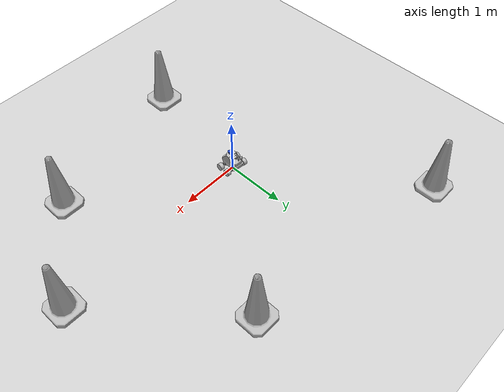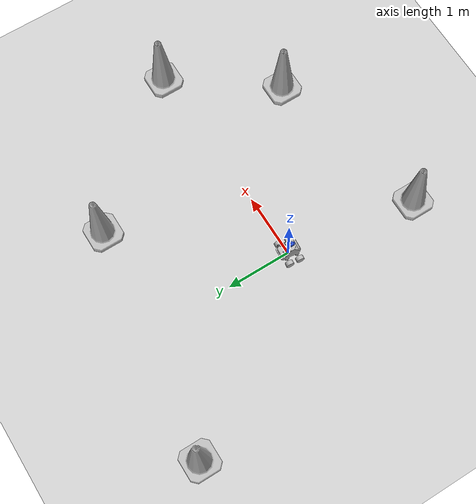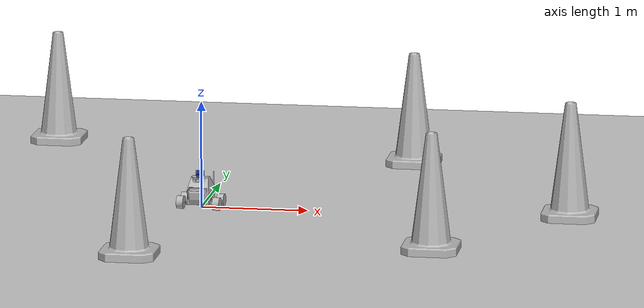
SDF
<sdf version="1.7">
 <world name="default">
  <light name="sun" type="directional">
   <pose>0 0 10 0 -0 0</pose>
   <diffuse>0.8 0.8 0.8 1</diffuse>
   <specular>0.2 0.2 0.2 1</specular>
   <attenuation>
    <range>1000</range>
    <constant>0.9</constant>
    <linear>0.01</linear>
    <quadratic>0.001</quadratic>
   </attenuation>
   <direction>-0.5 0.1 -0.9</direction>
   <spot><inner_angle>0</inner_angle><outer_angle>0</outer_angle><falloff>0</falloff></spot>
  </light>
  <model name="ground_plane">
   <static>1</static>
   <link name="link">
    <collision name="collision">
     <geometry><plane><normal>0 0 1</normal><size>100 100</size></plane></geometry>
     <surface><friction><ode><mu>100</mu><mu2>50</mu2></ode></friction></surface>
    </collision>
    <visual name="visual">
     <cast_shadows>0</cast_shadows>
     <geometry><plane><normal>0 0 1</normal><size>100 100</size></plane></geometry>
     <material>
      <script><uri>file://media/materials/scripts/gazebo.material</uri><name>Gazebo/Grey</name></script>
     </material>
    </visual>
   </link>
  </model>
  <gravity>0 0 -9.8</gravity>
  <magnetic_field>6e-06 2.3e-05 -4.2e-05</magnetic_field>
  <atmosphere type="adiabatic"/>
  <physics type="ode">
   <max_step_size>0.001</max_step_size>
   <real_time_factor>1</real_time_factor>
   <real_time_update_rate>1000</real_time_update_rate>
  </physics>
  <scene><ambient>0.4 0.4 0.4 1</ambient><background>0.7 0.7 0.7 1</background><shadows>1</shadows></scene>
  <audio><device>default</device></audio>
  <spherical_coordinates>
   <surface_model>EARTH_WGS84</surface_model>
   <latitude_deg>0</latitude_deg>
   <longitude_deg>0</longitude_deg>
   <elevation>0</elevation>
   <heading_deg>0</heading_deg>
  </spherical_coordinates>
  <model name="robot">
   <link name="base_link">
    <inertial>
     <pose>0.015785 9.1e-05 0.018895 0 -0 0</pose>
     <mass>5.07633</mass>
     <inertia>
      <ixx>0.0593334</ixx>
      <ixy>-7.42026e-05</ixy>
      <ixz>-0.00932083</ixz>
      <iyy>0.0573165</iyy>
      <iyz>1.2809e-05</iyz>
      <izz>0.0271707</izz>
     </inertia>
    </inertial>
    <collision name="base_link_fixed_joint_lump__camera_link_collision">
     <pose>0.1515 0.003588 0.025 0 -0 0</pose>
     <geometry><mesh><scale>1 1 1</scale><uri>model://robo2/meshes/camera_link.STL</uri></mesh></geometry>
    </collision>
    <collision name="base_link_fixed_joint_lump__chassis_link_collision_1">
     <geometry><mesh><scale>1 1 1</scale><uri>model://robo2/meshes/base_link.STL</uri></mesh></geometry>
    </collision>
    <collision name="base_link_fixed_joint_lump__lidar_collision_2">
     <pose>0.056196 0 0.1546 0 -0 0</pose>
     <geometry><mesh><scale>1 1 1</scale><uri>model://robo2/meshes/lidar.STL</uri></mesh></geometry>
    </collision>
    <visual name="base_link_fixed_joint_lump__camera_link_visual">
     <pose>0.1515 0.003588 0.025 0 -0 0</pose>
     <geometry><mesh><scale>1 1 1</scale><uri>model://robo2/meshes/camera_link.STL</uri></mesh></geometry>
    </visual>
    <visual name="base_link_fixed_joint_lump__chassis_link_visual_1">
     <geometry><mesh><scale>1 1 1</scale><uri>model://robo2/meshes/base_link.STL</uri></mesh></geometry>
    </visual>
    <visual name="base_link_fixed_joint_lump__lidar_visual_2">
     <pose>0.056196 0 0.1546 0 -0 0</pose>
     <geometry><mesh><scale>1 1 1</scale><uri>model://robo2/meshes/lidar.STL</uri></mesh></geometry>
     <material>
      <script><name>Gazebo/Blue</name><uri>file://media/materials/scripts/gazebo.material</uri></script>
     </material>
    </visual>
    <sensor name="camera" type="camera">
     <visualize>1</visualize>
     <update_rate>30</update_rate>
     <camera>
      <horizontal_fov>1.207</horizontal_fov>
      <image><width>1920</width><height>1080</height><format>R8G8B8</format></image>
      <clip><near>0.02</near><far>300</far></clip>
     </camera>
     <plugin name="camera_controller" filename="libgazebo_ros_camera.so">
      <alwaysOn>1</alwaysOn>
      <updateRate>0.0</updateRate>
      <cameraName>camera</cameraName>
      <imageTopicName>camera_image_raw</imageTopicName>
      <cameraInfoTopicName>camera_info</cameraInfoTopicName>
      <frameName>camera_link_optical</frameName>
      <hackBaseline>0.07</hackBaseline>
     </plugin>
     <pose>0.1515 0.003588 0.025 0 -0 0</pose>
    </sensor>
    <sensor name="laser" type="ray">
     <visualize>0</visualize>
     <update_rate>10</update_rate>
     <ray>
      <scan>
       <horizontal>
        <samples>360</samples>
        <min_angle>-3.14</min_angle>
        <max_angle>3.14</max_angle>
        <resolution>1</resolution>
       </horizontal>
       <vertical><samples>1</samples><min_angle>0</min_angle><max_angle>0</max_angle></vertical>
      </scan>
      <range><min>0.3</min><max>12</max></range>
     </ray>
     <plugin name="laser_controller" filename="libgazebo_ros_ray_sensor.so">
      <ros><argument>~/out:=scan</argument></ros>
      <output_type>sensor_msgs/LaserScan</output_type>
      <frame_name>lidar</frame_name>
     </plugin>
     <pose>0.056196 0 0.1546 0 -0 0</pose>
    </sensor>
   </link>
   <joint name="rueda_der_abajo_joint" type="revolute">
    <pose relative_to="base_link">-0.065951 -0.20435 -0.107 1.5708 -0 0</pose>
    <parent>base_link</parent>
    <child>rueda_der_abajo</child>
    <axis>
     <xyz>0 0 -1</xyz>
     <limit><lower>-1e+16</lower><upper>1e+16</upper></limit>
     <dynamics><spring_reference>0</spring_reference><spring_stiffness>0</spring_stiffness></dynamics>
    </axis>
   </joint>
   <link name="rueda_der_abajo">
    <pose relative_to="rueda_der_abajo_joint">0 0 0 0 -0 0</pose>
    <inertial>
     <pose>-0 -0 -0.031817 0 -0 0</pose>
     <mass>0.72984</mass>
     <inertia>
      <ixx>0.00091283</ixx>
      <ixy>1.6304e-19</ixy>
      <ixz>-5.3591e-20</ixz>
      <iyy>0.00091283</iyy>
      <iyz>-9.375e-20</iyz>
      <izz>0.001326</izz>
     </inertia>
    </inertial>
    <collision name="rueda_der_abajo_collision">
     <geometry><mesh><scale>1 1 1</scale><uri>model://robo2/meshes/rueda_der_abajo.STL</uri></mesh></geometry>
    </collision>
    <visual name="rueda_der_abajo_visual">
     <geometry><mesh><scale>1 1 1</scale><uri>model://robo2/meshes/rueda_der_abajo.STL</uri></mesh></geometry>
    </visual>
   </link>
   <joint name="rueda_der_arriba_joint" type="revolute">
    <pose relative_to="base_link">0.10092 -0.20435 -0.107 1.5708 -0 0</pose>
    <parent>base_link</parent>
    <child>rueda_der_arriba</child>
    <axis>
     <xyz>0 0 -1</xyz>
     <limit><lower>-1e+16</lower><upper>1e+16</upper></limit>
     <dynamics><spring_reference>0</spring_reference><spring_stiffness>0</spring_stiffness></dynamics>
    </axis>
   </joint>
   <link name="rueda_der_arriba">
    <pose relative_to="rueda_der_arriba_joint">0 0 0 0 -0 0</pose>
    <inertial>
     <pose>0 -0 -0.031817 0 -0 0</pose>
     <mass>0.72984</mass>
     <inertia>
      <ixx>0.00091283</ixx>
      <ixy>-7.5158e-20</ixy>
      <ixz>-3.6325e-20</ixz>
      <iyy>0.00091283</iyy>
      <iyz>-1.7327e-20</iyz>
      <izz>0.001326</izz>
     </inertia>
    </inertial>
    <collision name="rueda_der_arriba_collision">
     <geometry><mesh><scale>1 1 1</scale><uri>model://robo2/meshes/rueda_der_arriba.STL</uri></mesh></geometry>
    </collision>
    <visual name="rueda_der_arriba_visual">
     <geometry><mesh><scale>1 1 1</scale><uri>model://robo2/meshes/rueda_der_arriba.STL</uri></mesh></geometry>
    </visual>
   </link>
   <joint name="rueda_izq_abajo_joint" type="revolute">
    <pose relative_to="base_link">-0.065951 0.20435 -0.107 -1.5708 0 0</pose>
    <parent>base_link</parent>
    <child>rueda_izq_abajo</child>
    <axis>
     <xyz>0 0 1</xyz>
     <limit><lower>-1e+16</lower><upper>1e+16</upper></limit>
     <dynamics><spring_reference>0</spring_reference><spring_stiffness>0</spring_stiffness></dynamics>
    </axis>
   </joint>
   <link name="rueda_izq_abajo">
    <pose relative_to="rueda_izq_abajo_joint">0 0 0 0 -0 0</pose>
    <inertial>
     <pose>0 -0 -0.031817 0 -0 0</pose>
     <mass>0.72984</mass>
     <inertia>
      <ixx>0.00091283</ixx>
      <ixy>1.3848e-21</ixy>
      <ixz>4.073e-21</ixz>
      <iyy>0.00091283</iyy>
      <iyz>2.5739e-20</iyz>
      <izz>0.001326</izz>
     </inertia>
    </inertial>
    <collision name="rueda_izq_abajo_collision">
     <geometry><mesh><scale>1 1 1</scale><uri>model://robo2/meshes/rueda_izq_abajo.STL</uri></mesh></geometry>
    </collision>
    <visual name="rueda_izq_abajo_visual">
     <geometry><mesh><scale>1 1 1</scale><uri>model://robo2/meshes/rueda_izq_abajo.STL</uri></mesh></geometry>
    </visual>
   </link>
   <joint name="rueda_izq_arriba_joint" type="revolute">
    <pose relative_to="base_link">0.10092 0.20435 -0.107 -1.5708 0 0</pose>
    <parent>base_link</parent>
    <child>rueda_izq_arriba</child>
    <axis>
     <xyz>0 0 1</xyz>
     <limit><lower>-1e+16</lower><upper>1e+16</upper></limit>
     <dynamics><spring_reference>0</spring_reference><spring_stiffness>0</spring_stiffness></dynamics>
    </axis>
   </joint>
   <link name="rueda_izq_arriba">
    <pose relative_to="rueda_izq_arriba_joint">0 0 0 0 -0 0</pose>
    <inertial>
     <pose>0 0 -0.031817 0 -0 0</pose>
     <mass>0.72984</mass>
     <inertia>
      <ixx>0.00091283</ixx>
      <ixy>-4.1103e-20</ixy>
      <ixz>1.43e-20</ixz>
      <iyy>0.00091283</iyy>
      <iyz>-5.6001e-20</iyz>
      <izz>0.001326</izz>
     </inertia>
    </inertial>
    <collision name="rueda_izq_arriba_collision">
     <geometry><mesh><scale>1 1 1</scale><uri>model://robo2/meshes/rueda_izq_arriba.STL</uri></mesh></geometry>
    </collision>
    <visual name="rueda_izq_arriba_visual">
     <geometry><mesh><scale>1 1 1</scale><uri>model://robo2/meshes/rueda_izq_arriba.STL</uri></mesh></geometry>
    </visual>
   </link>
   <static>0</static>
   <plugin name="gazebo_ros2_control" filename="libgazebo_ros2_control.so">
    <parameters>/home/andres/agrobotV2/install/robo2/share/robo2/config/my_controllers.yaml</parameters>
   </plugin>
   <pose>-0.004061 -0.002322 0.167274 -1.3e-05 -1.9e-05 -1.65218</pose>
  </model>
  <model name="Construction Cone">
   <link name="link">
    <collision name="collision">
     <geometry>
      <mesh><scale>10 10 10</scale><uri>model://construction_cone/meshes/construction_cone.dae</uri></mesh>
     </geometry>
    </collision>
    <visual name="visual">
     <geometry>
      <mesh><scale>10 10 10</scale><uri>model://construction_cone/meshes/construction_cone.dae</uri></mesh>
     </geometry>
    </visual>
    <inertial>
     <inertia><ixx>1</ixx><ixy>0</ixy><ixz>0</ixz><iyy>1</iyy><iyz>0</iyz><izz>1</izz></inertia>
     <mass>1</mass>
    </inertial>
   </link>
   <pose>1.70031 2.13026 -1e-05 -1e-06 0 0</pose>
  </model>
  <model name="Construction Cone_0">
   <link name="link">
    <collision name="collision">
     <geometry>
      <mesh><scale>10 10 10</scale><uri>model://construction_cone/meshes/construction_cone.dae</uri></mesh>
     </geometry>
    </collision>
    <visual name="visual">
     <geometry>
      <mesh><scale>10 10 10</scale><uri>model://construction_cone/meshes/construction_cone.dae</uri></mesh>
     </geometry>
    </visual>
    <inertial>
     <inertia><ixx>1</ixx><ixy>0</ixy><ixz>0</ixz><iyy>1</iyy><iyz>0</iyz><izz>1</izz></inertia>
     <mass>1</mass>
    </inertial>
   </link>
   <pose>-0.300001 -2.02022 0 -0 -0 -0</pose>
  </model>
  <model name="Construction Cone_1">
   <link name="link">
    <collision name="collision">
     <geometry>
      <mesh><scale>10 10 10</scale><uri>model://construction_cone/meshes/construction_cone.dae</uri></mesh>
     </geometry>
    </collision>
    <visual name="visual">
     <geometry>
      <mesh><scale>10 10 10</scale><uri>model://construction_cone/meshes/construction_cone.dae</uri></mesh>
     </geometry>
    </visual>
    <inertial>
     <inertia><ixx>1</ixx><ixy>0</ixy><ixz>0</ixz><iyy>1</iyy><iyz>0</iyz><izz>1</izz></inertia>
     <mass>1</mass>
    </inertial>
   </link>
   <pose>-1.90448 2.63009 -6e-06 -4e-06 0 0</pose>
  </model>
  <model name="Construction Cone_2">
   <link name="link">
    <collision name="collision">
     <geometry>
      <mesh><scale>10 10 10</scale><uri>model://construction_cone/meshes/construction_cone.dae</uri></mesh>
     </geometry>
    </collision>
    <visual name="visual">
     <geometry>
      <mesh><scale>10 10 10</scale><uri>model://construction_cone/meshes/construction_cone.dae</uri></mesh>
     </geometry>
    </visual>
    <inertial>
     <inertia><ixx>1</ixx><ixy>0</ixy><ixz>0</ixz><iyy>1</iyy><iyz>0</iyz><izz>1</izz></inertia>
     <mass>1</mass>
    </inertial>
   </link>
   <pose>2.34471 -1.39714 -0 0 -0 0</pose>
  </model>
  <model name="Construction Cone_3">
   <link name="link">
    <collision name="collision">
     <geometry>
      <mesh><scale>10 10 10</scale><uri>model://construction_cone/meshes/construction_cone.dae</uri></mesh>
     </geometry>
    </collision>
    <visual name="visual">
     <geometry>
      <mesh><scale>10 10 10</scale><uri>model://construction_cone/meshes/construction_cone.dae</uri></mesh>
     </geometry>
    </visual>
    <inertial>
     <inertia><ixx>1</ixx><ixy>0</ixy><ixz>0</ixz><iyy>1</iyy><iyz>0</iyz><izz>1</izz></inertia>
     <mass>1</mass>
    </inertial>
   </link>
   <pose>3.43543 0.093738 -0 0 -1e-06 0</pose>
  </model>
 </world>
</sdf>
